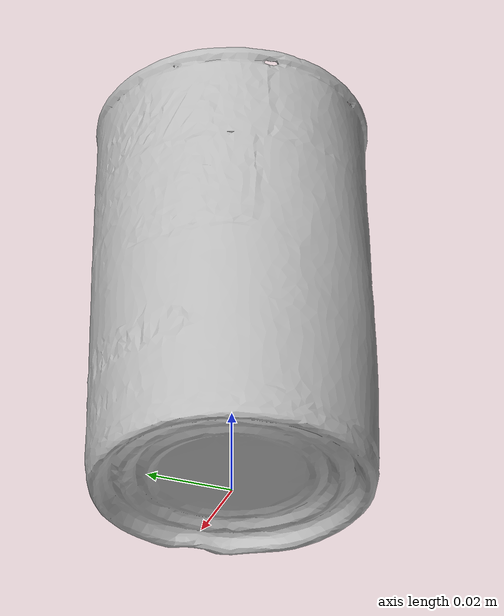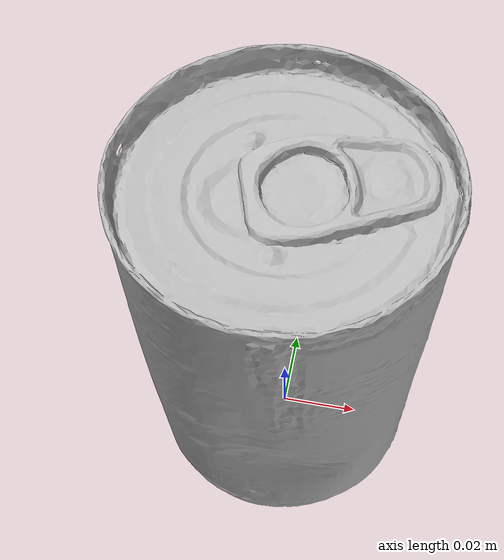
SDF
<?xml version="1.0"?>
<sdf version="1.6">
  <model name="tomato_soup_can">
    <link name="link">
      <inertial>
        <mass>0.349</mass>
        <inertia>
          <ixx>0.000391694</ixx>
          <ixy>0.0</ixy>
          <ixz>0.0</ixz>
          <iyy>0.000391694</iyy> <!-- same as ixx -->
          <iyz>0.0</iyz>
          <izz>0.00019003</izz>
        </inertia>
        <pose>0 0 0.0505 0 0 0</pose>
      </inertial>
      <collision name="collision">
        <pose>0 0 0.0505 0 0 0</pose>
        <geometry>
          <cylinder>
            <radius>0.033</radius>
            <length>0.101</length>
          </cylinder>
        </geometry>
      </collision>
      <visual name="visual">
        <!-- 修正原配置导致的约 86 mm 偏移，对齐网格与圆柱 collision 中心。 -->
        <pose>0.001383130 0.000855565 -0.000503905 0 0 0</pose>
        <geometry>
          <mesh>
            <uri>model://tomato_soup_can/meshes/textured.dae</uri>
          </mesh>
        </geometry>
      </visual>
    </link>
  </model>
</sdf>
